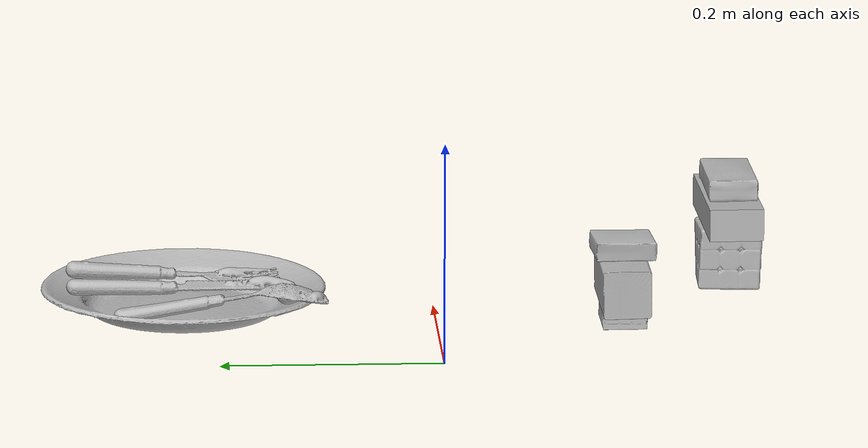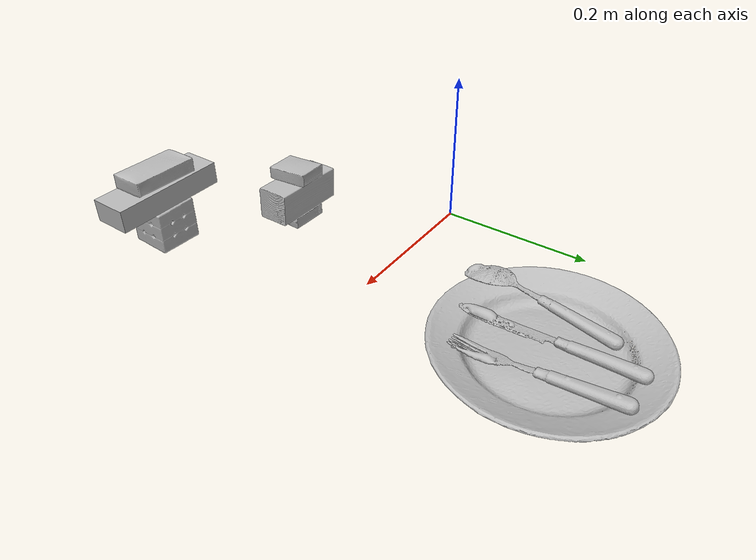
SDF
<?xml version="1.0" ?>
<sdf version="1.4">
  <world name="default">
    <light name="light1" type="point">
      <pose>0 0 1 0 0 0</pose>
      <diffuse>3 3 3 1</diffuse>
      <specular>3 3 3 1</specular>
    </light>
    <light name="light2" type="point">
      <pose>0 0.5 2 0 0 0</pose>
      <diffuse>1 1 1 1</diffuse>
      <specular>1 1 1 1</specular>
    </light>
    <light name="light3" type="point">
      <pose>0 0.5 2 0 0 0</pose>
      <diffuse>3 3 3 1</diffuse>
      <specular>3 3 3 1</specular>
    </light>
    <scene>
      <ambient>0.7 0.7 0.7</ambient>
    </scene>
    <model name="box11">
      <link name="link_box11">
        <collision name="default">
          <geometry>
            <mesh>
              <uri>model://cracker_box/collision_meshes/collision.obj</uri>
              <scale>0.25 0.25 0.25</scale>
            </mesh>
          </geometry>
          <surface>
            <friction>
              <ode>
                <mu>0.5</mu>
                <mu2>0.5</mu2>
              </ode>
            </friction>
          </surface>
        </collision>
        <visual name="default">
          <geometry>
            <mesh>
              <uri>model://cracker_box/visual_meshes/visual.dae</uri>
              <scale>0.25 0.25 0.25</scale>
            </mesh>
          </geometry>
        </visual>
        <inertial>
          <mass>0.022244147956371307</mass>
          <pose>0.00023660442093387246 6.358561950037256e-05 -0.00042573834070935845 -0.00031620774024180285 -0.011106489600345375 0.0025467943041161943</pose>
          <inertia>
            <ixx>3.5361988e-06</ixx>
            <iyy>5.838959e-06</iyy>
            <izz>8.33273e-06</izz>
            <ixy>0</ixy>
            <ixz>0</ixz>
            <iyz>0</iyz>
          </inertia>
        </inertial>
      </link>
      <pose>0.1299474537372589 -0.16985546052455902 0.009122784249484539 -0.012104828749889926 -0.0073897759178609725 -0.0005134147743119115</pose>
    </model>
    <model name="box12">
      <link name="link_box12">
        <collision name="default">
          <geometry>
            <mesh>
              <uri>model://wood_block/collision_meshes/collision.obj</uri>
              <scale>0.5 0.5 0.5</scale>
            </mesh>
          </geometry>
          <surface>
            <friction>
              <ode>
                <mu>0.5</mu>
                <mu2>0.5</mu2>
              </ode>
            </friction>
          </surface>
        </collision>
        <visual name="default">
          <geometry>
            <mesh>
              <uri>model://wood_block/visual_meshes/visual.dae</uri>
              <scale>0.5 0.5 0.5</scale>
            </mesh>
          </geometry>
        </visual>
        <inertial>
          <mass>0.19826212525367737</mass>
          <pose>-2.9066577553749084e-06 -0.00028540476341731846 0.00013204291462898254 -0.05221087153268513 -0.0051926957009938435 -0.006861378574469354</pose>
          <inertia>
            <ixx>6.632619e-05</ixx>
            <iyy>0.00020952444</iyy>
            <izz>0.0002087407</izz>
            <ixy>0</ixy>
            <ixz>0</ixz>
            <iyz>0</iyz>
          </inertia>
        </inertial>
      </link>
      <pose>0.12952820956707 -0.16898757219314575 0.040510546416044235 -0.014638366579852858 -0.01583673402279203 0.007986718826567598</pose>
    </model>
    <model name="box13">
      <link name="link_box13">
        <collision name="default">
          <geometry>
            <mesh>
              <uri>model://pudding_box/collision_meshes/collision.obj</uri>
              <scale>0.5 0.5 0.5</scale>
            </mesh>
          </geometry>
          <surface>
            <friction>
              <ode>
                <mu>0.5</mu>
                <mu2>0.5</mu2>
              </ode>
            </friction>
          </surface>
        </collision>
        <visual name="default">
          <geometry>
            <mesh>
              <uri>model://pudding_box/visual_meshes/visual.dae</uri>
              <scale>0.5 0.5 0.5</scale>
            </mesh>
          </geometry>
        </visual>
        <inertial>
          <mass>0.049741584807634354</mass>
          <pose>0.00024474109522998333 0.0004033942532259971 -0.0002594413817860186 0.005213101800084814 -0.006603799174386178 0.020079821432586128</pose>
          <inertia>
            <ixx>1.4057575e-05</ixx>
            <iyy>9.458037e-06</iyy>
            <izz>2.0759684e-05</izz>
            <ixy>0</ixy>
            <ixz>0</ixz>
            <iyz>0</iyz>
          </inertia>
        </inertial>
      </link>
      <pose>0.1291053295135498 -0.16934971511363983 0.0731787383556366 0.006280170479931941 -0.03189282478535313 0.07233403541357708</pose>
    </model>
    <model name="box21">
      <link name="link_box21">
        <collision name="default">
          <geometry>
            <mesh>
              <uri>model://rubiks_cube/collision_meshes/collision.obj</uri>
              <scale>1.0 1.0 1.0</scale>
            </mesh>
          </geometry>
          <surface>
            <friction>
              <ode>
                <mu>0.5</mu>
                <mu2>0.5</mu2>
              </ode>
            </friction>
          </surface>
        </collision>
        <visual name="default">
          <geometry>
            <mesh>
              <uri>model://rubiks_cube/visual_meshes/visual.dae</uri>
              <scale>1.0 1.0 1.0</scale>
            </mesh>
          </geometry>
        </visual>
        <inertial>
          <mass>0.14589080214500427</mass>
          <pose>2.6721043468569405e-05 5.256966323941015e-05 -7.264316082000732e-06 -0.054672881442690106 -0.09814117646273159 -0.034455034483302956</pose>
          <inertia>
            <ixx>8.061447e-05</ixx>
            <iyy>8.023852e-05</iyy>
            <izz>8.128248e-05</izz>
            <ixy>0</ixy>
            <ixz>0</ixz>
            <iyz>0</iyz>
          </inertia>
        </inertial>
      </link>
      <pose>0.26993146538734436 -0.2802272439002991 0.028678974136710167 -2.0062964547022676e-06 3.6767482320906176e-06 2.8945470461268514e-06</pose>
    </model>
    <model name="box22">
      <link name="link_box22">
        <collision name="default">
          <geometry>
            <mesh>
              <uri>model://jenga/collision_meshes/collision.obj</uri>
              <scale>1.0 1.0 1.0</scale>
            </mesh>
          </geometry>
          <surface>
            <friction>
              <ode>
                <mu>0.5</mu>
                <mu2>0.5</mu2>
              </ode>
            </friction>
          </surface>
        </collision>
        <visual name="default">
          <geometry>
            <mesh>
              <uri>model://jenga/visual_meshes/visual.dae</uri>
              <scale>1.0 1.0 1.0</scale>
            </mesh>
          </geometry>
        </visual>
        <inertial>
          <mass>0.13963866233825684</mass>
          <pose>-2.502855807051674e-07 -0.00010250010382151231 -4.092339804628864e-05 0.0 -7.342154049184251e-07 0.0</pose>
          <inertia>
            <ixx>3.8641407e-05</ixx>
            <iyy>0.00026183313</iyy>
            <izz>0.00027952914</izz>
            <ixy>0</ixy>
            <ixz>0</ixz>
            <iyz>0</iyz>
          </inertia>
        </inertial>
      </link>
      <pose>0.2701660990715027 -0.2797784209251404 0.07273316383361816 -0.007665650971684352 0.011316140684350409 0.004448685349684074</pose>
    </model>
    <model name="box23">
      <link name="link_box23">
        <collision name="default">
          <geometry>
            <mesh>
              <uri>model://sugar_box/collision_meshes/collision.obj</uri>
              <scale>0.5 0.5 0.5</scale>
            </mesh>
          </geometry>
          <surface>
            <friction>
              <ode>
                <mu>0.5</mu>
                <mu2>0.5</mu2>
              </ode>
            </friction>
          </surface>
        </collision>
        <visual name="default">
          <geometry>
            <mesh>
              <uri>model://sugar_box/visual_meshes/visual.dae</uri>
              <scale>0.5 0.5 0.5</scale>
            </mesh>
          </geometry>
        </visual>
        <inertial>
          <mass>0.09426560252904892</mass>
          <pose>0.0005171863595023751 1.924554817378521e-05 -0.00018182402709499002 -0.00040462606744182556 0.0010506635219056535 0.0026153790218759383</pose>
          <inertia>
            <ixx>1.963546e-05</ixx>
            <iyy>6.346583e-05</iyy>
            <izz>7.597618e-05</izz>
            <ixy>0</ixy>
            <ixz>0</ixz>
            <iyz>0</iyz>
          </inertia>
        </inertial>
      </link>
      <pose>0.2699902057647705 -0.27988573908805847 0.09913758188486099 -0.006885891984527999 -0.012123459968093456 0.004310049296569778</pose>
    </model>
    <model name="plate1">
      <link name="link_plate1">
        <collision name="default">
          <geometry>
            <mesh>
              <uri>model://plate/collision_meshes/collision.obj</uri>
              <scale>1.0 1.0 1.0</scale>
            </mesh>
          </geometry>
          <surface>
            <friction>
              <ode>
                <mu>0.5</mu>
                <mu2>0.5</mu2>
              </ode>
            </friction>
          </surface>
        </collision>
        <visual name="default">
          <geometry>
            <mesh>
              <uri>model://plate/visual_meshes/visual.dae</uri>
              <scale>1.0 1.0 1.0</scale>
            </mesh>
          </geometry>
        </visual>
        <inertial>
          <mass>0.11197491735219955</mass>
          <pose>-0.0006044617621228099 0.00027825823053717613 -0.001056199544109404 0.00221882520869589 -0.003225452482750881 0.45259630068278056</pose>
          <inertia>
            <ixx>0.0005238209</ixx>
            <iyy>0.00051881076</iyy>
            <izz>0.0010245154</izz>
            <ixy>0</ixy>
            <ixz>0</ixz>
            <iyz>0</iyz>
          </inertia>
        </inertial>
      </link>
      <pose>0.18999998271465302 0.23000001907348633 0.013732991181313992 -4.156027296766531e-08 -8.03265458947553e-09 1.489579607965791e-07</pose>
    </model>
    <model name="silverware1">
      <link name="link_silverware1">
        <collision name="default">
          <geometry>
            <mesh>
              <uri>model://knife/collision_meshes/collision.obj</uri>
              <scale>1.0 1.0 1.0</scale>
            </mesh>
          </geometry>
          <surface>
            <friction>
              <ode>
                <mu>0.5</mu>
                <mu2>0.5</mu2>
              </ode>
            </friction>
          </surface>
        </collision>
        <visual name="default">
          <geometry>
            <mesh>
              <uri>model://knife/visual_meshes/visual.dae</uri>
              <scale>1.0 1.0 1.0</scale>
            </mesh>
          </geometry>
        </visual>
        <inertial>
          <mass>0.01465720683336258</mass>
          <pose>-0.023785248398780823 0.0015275123296305537 5.062019408796914e-05 0.07304601322977639 0.017248415474028462 -0.007409829977624996</pose>
          <inertia>
            <ixx>4.1603096e-07</ixx>
            <iyy>5.6310615e-05</iyy>
            <izz>5.6444613e-05</izz>
            <ixy>0</ixy>
            <ixz>0</ixz>
            <iyz>0</iyz>
          </inertia>
        </inertial>
      </link>
      <pose>0.1897505819797516 0.22986982762813568 0.024608425796031952 -2.999141966419884 0.019875166574196607 -1.5351255023948804</pose>
    </model>
    <model name="silverware2">
      <link name="link_silverware2">
        <collision name="default">
          <geometry>
            <mesh>
              <uri>model://spoon/collision_meshes/collision.obj</uri>
              <scale>1.0 1.0 1.0</scale>
            </mesh>
          </geometry>
          <surface>
            <friction>
              <ode>
                <mu>0.5</mu>
                <mu2>0.5</mu2>
              </ode>
            </friction>
          </surface>
        </collision>
        <visual name="default">
          <geometry>
            <mesh>
              <uri>model://spoon/visual_meshes/visual.dae</uri>
              <scale>1.0 1.0 1.0</scale>
            </mesh>
          </geometry>
        </visual>
        <inertial>
          <mass>0.03463635593652725</mass>
          <pose>-0.005526320077478886 -0.0016034176805987954 -0.0007271658396348357 0.035218626746325574 -0.03906584480927328 0.006150611928774215</pose>
          <inertia>
            <ixx>1.9265303e-06</ixx>
            <iyy>0.0001317902</iyy>
            <izz>0.00013274024</izz>
            <ixy>0</ixy>
            <ixz>0</ixz>
            <iyz>0</iyz>
          </inertia>
        </inertial>
      </link>
      <pose>0.1322348415851593 0.19581931829452515 0.022466400638222694 -3.0963161259979213 -0.1604349188364442 -1.600079502855295</pose>
    </model>
    <model name="silverware3">
      <link name="link_silverware3">
        <collision name="default">
          <geometry>
            <mesh>
              <uri>model://fork/collision_meshes/collision.obj</uri>
              <scale>1.0 1.0 1.0</scale>
            </mesh>
          </geometry>
          <surface>
            <friction>
              <ode>
                <mu>0.5</mu>
                <mu2>0.5</mu2>
              </ode>
            </friction>
          </surface>
        </collision>
        <visual name="default">
          <geometry>
            <mesh>
              <uri>model://fork/visual_meshes/visual.dae</uri>
              <scale>1.0 1.0 1.0</scale>
            </mesh>
          </geometry>
        </visual>
        <inertial>
          <mass>0.019285527989268303</mass>
          <pose>-0.029570043087005615 0.0004658823017962277 0.0003218861238565296 -0.013551447953525298 -0.010977835959949084 0.014453901308334693</pose>
          <inertia>
            <ixx>6.760669e-07</ixx>
            <iyy>5.0348972e-05</iyy>
            <izz>5.065136e-05</izz>
            <ixy>0</ixy>
            <ixz>0</ixz>
            <iyz>0</iyz>
          </inertia>
        </inertial>
      </link>
      <pose>0.23900938034057617 0.23958006501197815 0.022623935714364052 0.24900207431936083 0.08004808478550282 -1.5245217518175276</pose>
    </model>
  </world>
</sdf>
